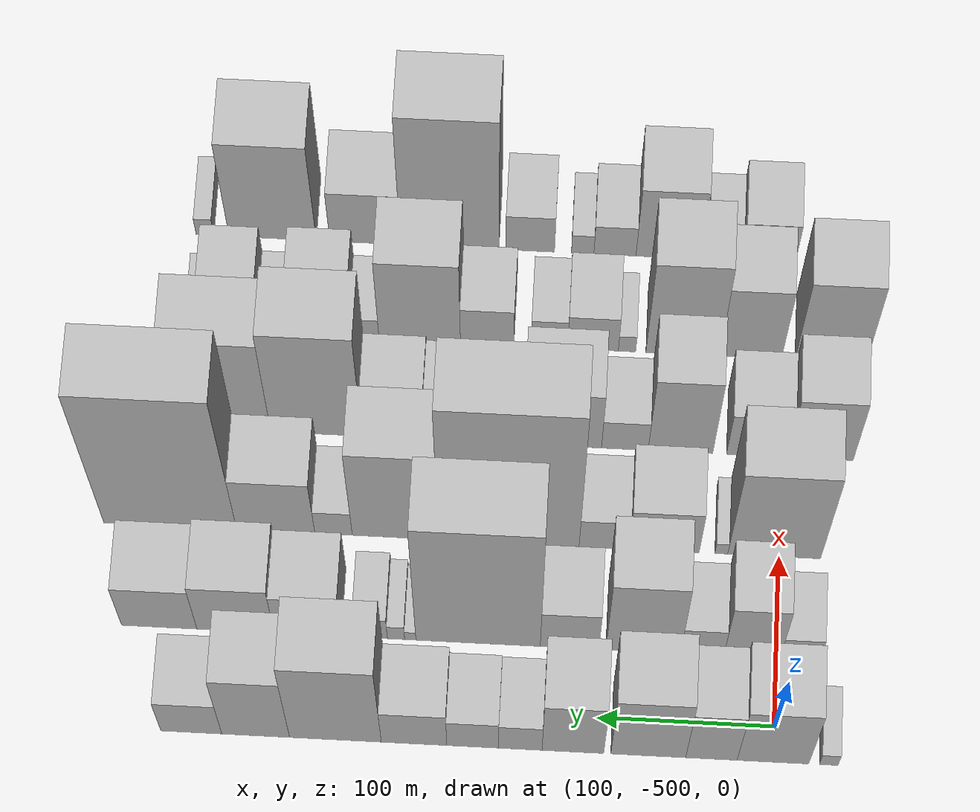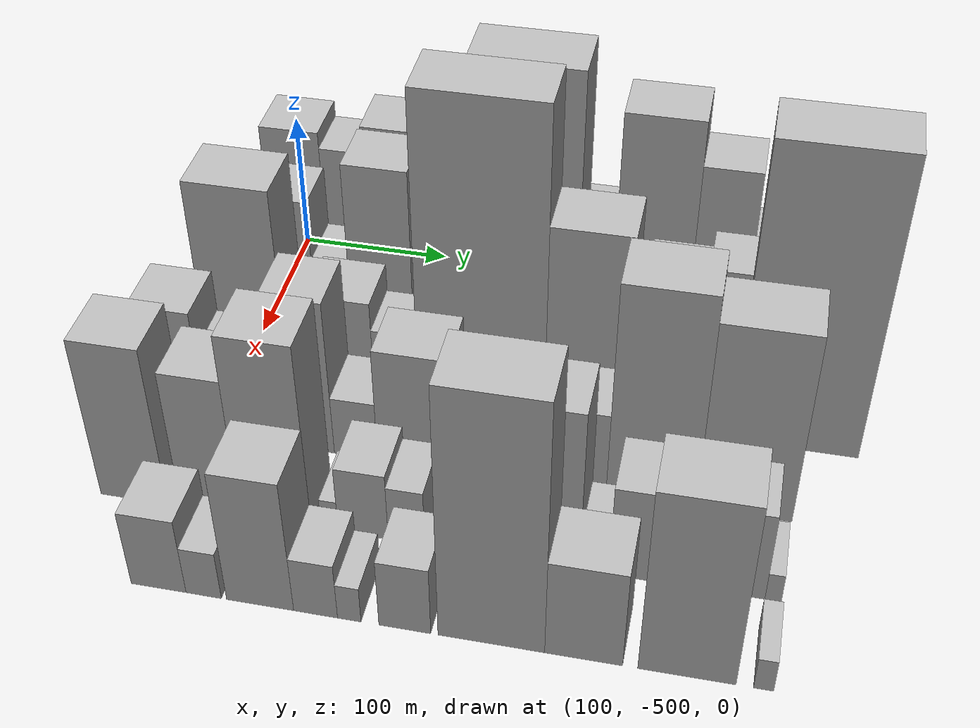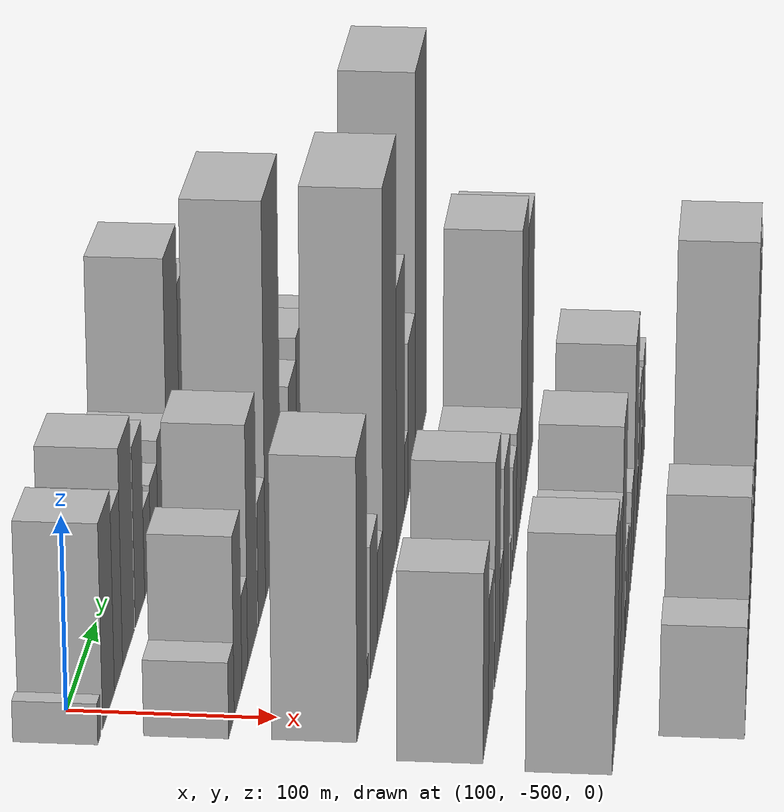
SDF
<sdf version="1.6">
 <world name="default">
  <model name="building_10">
   <static>1</static>
   <pose>100.0000 -530.5697 0 0.000000 0.000000 0.000000</pose>
   <link name="link">
    <pose>0 0 10.50 0 0 0</pose>
    <collision name="collision"><geometry><box><size>40.0000 10.3967 21.0000</size></box></geometry></collision>
    <visual name="visual">
     <cast_shadows>0</cast_shadows>
     <geometry><box><size>40.0000 10.3967 21.0000</size></box></geometry>
     <material>
      <script>
       <uri>model://HANNAS_wall/materials/scripts</uri>
       <uri>model://HANNAS_wall/materials/textures</uri>
       <name>vrc/HANNAS_wall</name>
      </script>
     </material>
    </visual>
   </link>
  </model>
  <model name="building_11">
   <static>1</static>
   <pose>100.0000 -499.3251 0 0.000000 0.000000 0.000000</pose>
   <link name="link">
    <pose>0 0 52.50 0 0 0</pose>
    <collision name="collision"><geometry><box><size>40.0000 40.0925 105.0000</size></box></geometry></collision>
    <visual name="visual">
     <cast_shadows>0</cast_shadows>
     <geometry><box><size>40.0000 40.0925 105.0000</size></box></geometry>
     <material>
      <script>
       <uri>model://HANNAS_wall/materials/scripts</uri>
       <uri>model://HANNAS_wall/materials/textures</uri>
       <name>vrc/HANNAS_wall</name>
      </script>
     </material>
    </visual>
   </link>
  </model>
  <model name="building_12">
   <static>1</static>
   <pose>100.0000 -464.9103 0 0.000000 0.000000 0.000000</pose>
   <link name="link">
    <pose>0 0 46.50 0 0 0</pose>
    <collision name="collision"><geometry><box><size>40.0000 28.7370 93.0000</size></box></geometry></collision>
    <visual name="visual">
     <cast_shadows>0</cast_shadows>
     <geometry><box><size>40.0000 28.7370 93.0000</size></box></geometry>
     <material>
      <script>
       <uri>model://HANNAS_wall/materials/scripts</uri>
       <uri>model://HANNAS_wall/materials/textures</uri>
       <name>vrc/HANNAS_wall</name>
      </script>
     </material>
    </visual>
   </link>
  </model>
  <model name="building_13">
   <static>1</static>
   <pose>100.0000 -429.5925 0 0.000000 0.000000 0.000000</pose>
   <link name="link">
    <pose>0 0 57.00 0 0 0</pose>
    <collision name="collision"><geometry><box><size>40.0000 41.8985 114.0000</size></box></geometry></collision>
    <visual name="visual">
     <cast_shadows>0</cast_shadows>
     <geometry><box><size>40.0000 41.8985 114.0000</size></box></geometry>
     <material>
      <script>
       <uri>model://HANNAS_wall/materials/scripts</uri>
       <uri>model://HANNAS_wall/materials/textures</uri>
       <name>vrc/HANNAS_wall</name>
      </script>
     </material>
    </visual>
   </link>
  </model>
  <model name="building_14">
   <static>1</static>
   <pose>100.0000 -387.3747 0 0.000000 0.000000 0.000000</pose>
   <link name="link">
    <pose>0 0 48.00 0 0 0</pose>
    <collision name="collision"><geometry><box><size>40.0000 34.5371 96.0000</size></box></geometry></collision>
    <visual name="visual">
     <cast_shadows>0</cast_shadows>
     <geometry><box><size>40.0000 34.5371 96.0000</size></box></geometry>
     <material>
      <script>
       <uri>model://HANNAS_wall/materials/scripts</uri>
       <uri>model://HANNAS_wall/materials/textures</uri>
       <name>vrc/HANNAS_wall</name>
      </script>
     </material>
    </visual>
   </link>
  </model>
  <model name="building_15">
   <static>1</static>
   <pose>100.0000 -357.9242 0 0.000000 0.000000 0.000000</pose>
   <link name="link">
    <pose>0 0 24.00 0 0 0</pose>
    <collision name="collision"><geometry><box><size>40.0000 24.3640 48.0000</size></box></geometry></collision>
    <visual name="visual">
     <cast_shadows>0</cast_shadows>
     <geometry><box><size>40.0000 24.3640 48.0000</size></box></geometry>
     <material>
      <script>
       <uri>model://HANNAS_wall/materials/scripts</uri>
       <uri>model://HANNAS_wall/materials/textures</uri>
       <name>vrc/HANNAS_wall</name>
      </script>
     </material>
    </visual>
   </link>
  </model>
  <model name="building_16">
   <static>1</static>
   <pose>100.0000 -331.2372 0 0.000000 0.000000 0.000000</pose>
   <link name="link">
    <pose>0 0 25.50 0 0 0</pose>
    <collision name="collision"><geometry><box><size>40.0000 29.0099 51.0000</size></box></geometry></collision>
    <visual name="visual">
     <cast_shadows>0</cast_shadows>
     <geometry><box><size>40.0000 29.0099 51.0000</size></box></geometry>
     <material>
      <script>
       <uri>model://HANNAS_wall/materials/scripts</uri>
       <uri>model://HANNAS_wall/materials/textures</uri>
       <name>vrc/HANNAS_wall</name>
      </script>
     </material>
    </visual>
   </link>
  </model>
  <model name="building_17">
   <static>1</static>
   <pose>100.0000 -298.3507 0 0.000000 0.000000 0.000000</pose>
   <link name="link">
    <pose>0 0 31.50 0 0 0</pose>
    <collision name="collision"><geometry><box><size>40.0000 36.7631 63.0000</size></box></geometry></collision>
    <visual name="visual">
     <cast_shadows>0</cast_shadows>
     <geometry><box><size>40.0000 36.7631 63.0000</size></box></geometry>
     <material>
      <script>
       <uri>model://HANNAS_wall/materials/scripts</uri>
       <uri>model://HANNAS_wall/materials/textures</uri>
       <name>vrc/HANNAS_wall</name>
      </script>
     </material>
    </visual>
   </link>
  </model>
  <model name="building_18">
   <static>1</static>
   <pose>100.0000 -254.2141 0 0.000000 0.000000 0.000000</pose>
   <link name="link">
    <pose>0 0 73.50 0 0 0</pose>
    <collision name="collision"><geometry><box><size>40.0000 51.5102 147.0000</size></box></geometry></collision>
    <visual name="visual">
     <cast_shadows>0</cast_shadows>
     <geometry><box><size>40.0000 51.5102 147.0000</size></box></geometry>
     <material>
      <script>
       <uri>model://HANNAS_wall/materials/scripts</uri>
       <uri>model://HANNAS_wall/materials/textures</uri>
       <name>vrc/HANNAS_wall</name>
      </script>
     </material>
    </visual>
   </link>
  </model>
  <model name="building_19">
   <static>1</static>
   <pose>100.0000 -209.4136 0 0.000000 0.000000 0.000000</pose>
   <link name="link">
    <pose>0 0 57.00 0 0 0</pose>
    <collision name="collision"><geometry><box><size>40.0000 38.0908 114.0000</size></box></geometry></collision>
    <visual name="visual">
     <cast_shadows>0</cast_shadows>
     <geometry><box><size>40.0000 38.0908 114.0000</size></box></geometry>
     <material>
      <script>
       <uri>model://HANNAS_wall/materials/scripts</uri>
       <uri>model://HANNAS_wall/materials/textures</uri>
       <name>vrc/HANNAS_wall</name>
      </script>
     </material>
    </visual>
   </link>
  </model>
  <model name="building_20">
   <static>1</static>
   <pose>100.0000 -173.2493 0 0.000000 0.000000 0.000000</pose>
   <link name="link">
    <pose>0 0 30.00 0 0 0</pose>
    <collision name="collision"><geometry><box><size>40.0000 34.2378 60.0000</size></box></geometry></collision>
    <visual name="visual">
     <cast_shadows>0</cast_shadows>
     <geometry><box><size>40.0000 34.2378 60.0000</size></box></geometry>
     <material>
      <script>
       <uri>model://HANNAS_wall/materials/scripts</uri>
       <uri>model://HANNAS_wall/materials/textures</uri>
       <name>vrc/HANNAS_wall</name>
      </script>
     </material>
    </visual>
   </link>
  </model>
  <model name="building_68">
   <static>1</static>
   <pose>160.0000 -513.1704 0 0.000000 0.000000 0.000000</pose>
   <link name="link">
    <pose>0 0 19.50 0 0 0</pose>
    <collision name="collision"><geometry><box><size>40.0000 22.6113 39.0000</size></box></geometry></collision>
    <visual name="visual">
     <cast_shadows>0</cast_shadows>
     <geometry><box><size>40.0000 22.6113 39.0000</size></box></geometry>
     <material>
      <script>
       <uri>model://HANNAS_wall/materials/scripts</uri>
       <uri>model://HANNAS_wall/materials/textures</uri>
       <name>vrc/HANNAS_wall</name>
      </script>
     </material>
    </visual>
   </link>
  </model>
  <model name="building_69">
   <static>1</static>
   <pose>160.0000 -485.9086 0 0.000000 0.000000 0.000000</pose>
   <link name="link">
    <pose>0 0 46.50 0 0 0</pose>
    <collision name="collision"><geometry><box><size>40.0000 31.9123 93.0000</size></box></geometry></collision>
    <visual name="visual">
     <cast_shadows>0</cast_shadows>
     <geometry><box><size>40.0000 31.9123 93.0000</size></box></geometry>
     <material>
      <script>
       <uri>model://HANNAS_wall/materials/scripts</uri>
       <uri>model://HANNAS_wall/materials/textures</uri>
       <name>vrc/HANNAS_wall</name>
      </script>
     </material>
    </visual>
   </link>
  </model>
  <model name="building_70">
   <static>1</static>
   <pose>160.0000 -457.7327 0 0.000000 0.000000 0.000000</pose>
   <link name="link">
    <pose>0 0 24.00 0 0 0</pose>
    <collision name="collision"><geometry><box><size>40.0000 24.4393 48.0000</size></box></geometry></collision>
    <visual name="visual">
     <cast_shadows>0</cast_shadows>
     <geometry><box><size>40.0000 24.4393 48.0000</size></box></geometry>
     <material>
      <script>
       <uri>model://HANNAS_wall/materials/scripts</uri>
       <uri>model://HANNAS_wall/materials/textures</uri>
       <name>vrc/HANNAS_wall</name>
      </script>
     </material>
    </visual>
   </link>
  </model>
  <model name="building_71">
   <static>1</static>
   <pose>160.0000 -424.4510 0 0.000000 0.000000 0.000000</pose>
   <link name="link">
    <pose>0 0 63.00 0 0 0</pose>
    <collision name="collision"><geometry><box><size>40.0000 42.1241 126.0000</size></box></geometry></collision>
    <visual name="visual">
     <cast_shadows>0</cast_shadows>
     <geometry><box><size>40.0000 42.1241 126.0000</size></box></geometry>
     <material>
      <script>
       <uri>model://HANNAS_wall/materials/scripts</uri>
       <uri>model://HANNAS_wall/materials/textures</uri>
       <name>vrc/HANNAS_wall</name>
      </script>
     </material>
    </visual>
   </link>
  </model>
  <model name="building_72">
   <static>1</static>
   <pose>160.0000 -382.8253 0 0.000000 0.000000 0.000000</pose>
   <link name="link">
    <pose>0 0 33.00 0 0 0</pose>
    <collision name="collision"><geometry><box><size>40.0000 33.1273 66.0000</size></box></geometry></collision>
    <visual name="visual">
     <cast_shadows>0</cast_shadows>
     <geometry><box><size>40.0000 33.1273 66.0000</size></box></geometry>
     <material>
      <script>
       <uri>model://HANNAS_wall/materials/scripts</uri>
       <uri>model://HANNAS_wall/materials/textures</uri>
       <name>vrc/HANNAS_wall</name>
      </script>
     </material>
    </visual>
   </link>
  </model>
  <model name="building_73">
   <static>1</static>
   <pose>160.0000 -331.0440 0 0.000000 0.000000 0.000000</pose>
   <link name="link">
    <pose>0 0 105.00 0 0 0</pose>
    <collision name="collision"><geometry><box><size>40.0000 70.4354 210.0000</size></box></geometry></collision>
    <visual name="visual">
     <cast_shadows>0</cast_shadows>
     <geometry><box><size>40.0000 70.4354 210.0000</size></box></geometry>
     <material>
      <script>
       <uri>model://HANNAS_wall/materials/scripts</uri>
       <uri>model://HANNAS_wall/materials/textures</uri>
       <name>vrc/HANNAS_wall</name>
      </script>
     </material>
    </visual>
   </link>
  </model>
  <model name="building_74">
   <static>1</static>
   <pose>160.0000 -292.6274 0 0.000000 0.000000 0.000000</pose>
   <link name="link">
    <pose>0 0 7.50 0 0 0</pose>
    <collision name="collision"><geometry><box><size>40.0000 6.3979 15.0000</size></box></geometry></collision>
    <visual name="visual">
     <cast_shadows>0</cast_shadows>
     <geometry><box><size>40.0000 6.3979 15.0000</size></box></geometry>
     <material>
      <script>
       <uri>model://HANNAS_wall/materials/scripts</uri>
       <uri>model://HANNAS_wall/materials/textures</uri>
       <name>vrc/HANNAS_wall</name>
      </script>
     </material>
    </visual>
   </link>
  </model>
  <model name="building_75">
   <static>1</static>
   <pose>160.0000 -284.5521 0 0.000000 0.000000 0.000000</pose>
   <link name="link">
    <pose>0 0 12.00 0 0 0</pose>
    <collision name="collision"><geometry><box><size>40.0000 9.7528 24.0000</size></box></geometry></collision>
    <visual name="visual">
     <cast_shadows>0</cast_shadows>
     <geometry><box><size>40.0000 9.7528 24.0000</size></box></geometry>
     <material>
      <script>
       <uri>model://HANNAS_wall/materials/scripts</uri>
       <uri>model://HANNAS_wall/materials/textures</uri>
       <name>vrc/HANNAS_wall</name>
      </script>
     </material>
    </visual>
   </link>
  </model>
  <model name="building_76">
   <static>1</static>
   <pose>160.0000 -270.1058 0 0.000000 0.000000 0.000000</pose>
   <link name="link">
    <pose>0 0 18.00 0 0 0</pose>
    <collision name="collision"><geometry><box><size>40.0000 19.1396 36.0000</size></box></geometry></collision>
    <visual name="visual">
     <cast_shadows>0</cast_shadows>
     <geometry><box><size>40.0000 19.1396 36.0000</size></box></geometry>
     <material>
      <script>
       <uri>model://HANNAS_wall/materials/scripts</uri>
       <uri>model://HANNAS_wall/materials/textures</uri>
       <name>vrc/HANNAS_wall</name>
      </script>
     </material>
    </visual>
   </link>
  </model>
  <model name="building_77">
   <static>1</static>
   <pose>160.0000 -234.4825 0 0.000000 0.000000 0.000000</pose>
   <link name="link">
    <pose>0 0 34.50 0 0 0</pose>
    <collision name="collision"><geometry><box><size>40.0000 38.1070 69.0000</size></box></geometry></collision>
    <visual name="visual">
     <cast_shadows>0</cast_shadows>
     <geometry><box><size>40.0000 38.1070 69.0000</size></box></geometry>
     <material>
      <script>
       <uri>model://HANNAS_wall/materials/scripts</uri>
       <uri>model://HANNAS_wall/materials/textures</uri>
       <name>vrc/HANNAS_wall</name>
      </script>
     </material>
    </visual>
   </link>
  </model>
  <model name="building_78">
   <static>1</static>
   <pose>160.0000 -193.5010 0 0.000000 0.000000 0.000000</pose>
   <link name="link">
    <pose>0 0 40.50 0 0 0</pose>
    <collision name="collision"><geometry><box><size>40.0000 43.8559 81.0000</size></box></geometry></collision>
    <visual name="visual">
     <cast_shadows>0</cast_shadows>
     <geometry><box><size>40.0000 43.8559 81.0000</size></box></geometry>
     <material>
      <script>
       <uri>model://HANNAS_wall/materials/scripts</uri>
       <uri>model://HANNAS_wall/materials/textures</uri>
       <name>vrc/HANNAS_wall</name>
      </script>
     </material>
    </visual>
   </link>
  </model>
  <model name="building_79">
   <static>1</static>
   <pose>160.0000 -150.1624 0 0.000000 0.000000 0.000000</pose>
   <link name="link">
    <pose>0 0 36.00 0 0 0</pose>
    <collision name="collision"><geometry><box><size>40.0000 42.8214 72.0000</size></box></geometry></collision>
    <visual name="visual">
     <cast_shadows>0</cast_shadows>
     <geometry><box><size>40.0000 42.8214 72.0000</size></box></geometry>
     <material>
      <script>
       <uri>model://HANNAS_wall/materials/scripts</uri>
       <uri>model://HANNAS_wall/materials/textures</uri>
       <name>vrc/HANNAS_wall</name>
      </script>
     </material>
    </visual>
   </link>
  </model>
  <model name="building_121">
   <static>1</static>
   <pose>220.0000 -497.0062 0 0.000000 0.000000 0.000000</pose>
   <link name="link">
    <pose>0 0 72.00 0 0 0</pose>
    <collision name="collision"><geometry><box><size>40.0000 52.9802 144.0000</size></box></geometry></collision>
    <visual name="visual">
     <cast_shadows>0</cast_shadows>
     <geometry><box><size>40.0000 52.9802 144.0000</size></box></geometry>
     <material>
      <script>
       <uri>model://HANNAS_wall/materials/scripts</uri>
       <uri>model://HANNAS_wall/materials/textures</uri>
       <name>vrc/HANNAS_wall</name>
      </script>
     </material>
    </visual>
   </link>
  </model>
  <model name="building_122">
   <static>1</static>
   <pose>220.0000 -466.8539 0 0.000000 0.000000 0.000000</pose>
   <link name="link">
    <pose>0 0 9.00 0 0 0</pose>
    <collision name="collision"><geometry><box><size>40.0000 7.3245 18.0000</size></box></geometry></collision>
    <visual name="visual">
     <cast_shadows>0</cast_shadows>
     <geometry><box><size>40.0000 7.3245 18.0000</size></box></geometry>
     <material>
      <script>
       <uri>model://HANNAS_wall/materials/scripts</uri>
       <uri>model://HANNAS_wall/materials/textures</uri>
       <name>vrc/HANNAS_wall</name>
      </script>
     </material>
    </visual>
   </link>
  </model>
  <model name="building_123">
   <static>1</static>
   <pose>220.0000 -434.1143 0 0.000000 0.000000 0.000000</pose>
   <link name="link">
    <pose>0 0 34.50 0 0 0</pose>
    <collision name="collision"><geometry><box><size>40.0000 40.1546 69.0000</size></box></geometry></collision>
    <visual name="visual">
     <cast_shadows>0</cast_shadows>
     <geometry><box><size>40.0000 40.1546 69.0000</size></box></geometry>
     <material>
      <script>
       <uri>model://HANNAS_wall/materials/scripts</uri>
       <uri>model://HANNAS_wall/materials/textures</uri>
       <name>vrc/HANNAS_wall</name>
      </script>
     </material>
    </visual>
   </link>
  </model>
  <model name="building_124">
   <static>1</static>
   <pose>220.0000 -399.8098 0 0.000000 0.000000 0.000000</pose>
   <link name="link">
    <pose>0 0 24.00 0 0 0</pose>
    <collision name="collision"><geometry><box><size>40.0000 28.4546 48.0000</size></box></geometry></collision>
    <visual name="visual">
     <cast_shadows>0</cast_shadows>
     <geometry><box><size>40.0000 28.4546 48.0000</size></box></geometry>
     <material>
      <script>
       <uri>model://HANNAS_wall/materials/scripts</uri>
       <uri>model://HANNAS_wall/materials/textures</uri>
       <name>vrc/HANNAS_wall</name>
      </script>
     </material>
    </visual>
   </link>
  </model>
  <model name="building_125">
   <static>1</static>
   <pose>220.0000 -345.3680 0 0.000000 0.000000 0.000000</pose>
   <link name="link">
    <pose>0 0 112.50 0 0 0</pose>
    <collision name="collision"><geometry><box><size>40.0000 80.4290 225.0000</size></box></geometry></collision>
    <visual name="visual">
     <cast_shadows>0</cast_shadows>
     <geometry><box><size>40.0000 80.4290 225.0000</size></box></geometry>
     <material>
      <script>
       <uri>model://HANNAS_wall/materials/scripts</uri>
       <uri>model://HANNAS_wall/materials/textures</uri>
       <name>vrc/HANNAS_wall</name>
      </script>
     </material>
    </visual>
   </link>
  </model>
  <model name="building_126">
   <static>1</static>
   <pose>220.0000 -280.5073 0 0.000000 0.000000 0.000000</pose>
   <link name="link">
    <pose>0 0 72.00 0 0 0</pose>
    <collision name="collision"><geometry><box><size>40.0000 49.2924 144.0000</size></box></geometry></collision>
    <visual name="visual">
     <cast_shadows>0</cast_shadows>
     <geometry><box><size>40.0000 49.2924 144.0000</size></box></geometry>
     <material>
      <script>
       <uri>model://HANNAS_wall/materials/scripts</uri>
       <uri>model://HANNAS_wall/materials/textures</uri>
       <name>vrc/HANNAS_wall</name>
      </script>
     </material>
    </visual>
   </link>
  </model>
  <model name="building_127">
   <static>1</static>
   <pose>220.0000 -245.1396 0 0.000000 0.000000 0.000000</pose>
   <link name="link">
    <pose>0 0 19.50 0 0 0</pose>
    <collision name="collision"><geometry><box><size>40.0000 21.4431 39.0000</size></box></geometry></collision>
    <visual name="visual">
     <cast_shadows>0</cast_shadows>
     <geometry><box><size>40.0000 21.4431 39.0000</size></box></geometry>
     <material>
      <script>
       <uri>model://HANNAS_wall/materials/scripts</uri>
       <uri>model://HANNAS_wall/materials/textures</uri>
       <name>vrc/HANNAS_wall</name>
      </script>
     </material>
    </visual>
   </link>
  </model>
  <model name="building_128">
   <static>1</static>
   <pose>220.0000 -211.9823 0 0.000000 0.000000 0.000000</pose>
   <link name="link">
    <pose>0 0 43.50 0 0 0</pose>
    <collision name="collision"><geometry><box><size>40.0000 44.8714 87.0000</size></box></geometry></collision>
    <visual name="visual">
     <cast_shadows>0</cast_shadows>
     <geometry><box><size>40.0000 44.8714 87.0000</size></box></geometry>
     <material>
      <script>
       <uri>model://HANNAS_wall/materials/scripts</uri>
       <uri>model://HANNAS_wall/materials/textures</uri>
       <name>vrc/HANNAS_wall</name>
      </script>
     </material>
    </visual>
   </link>
  </model>
  <model name="building_129">
   <static>1</static>
   <pose>220.0000 -151.4344 0 0.000000 0.000000 0.000000</pose>
   <link name="link">
    <pose>0 0 109.50 0 0 0</pose>
    <collision name="collision"><geometry><box><size>40.0000 76.2244 219.0000</size></box></geometry></collision>
    <visual name="visual">
     <cast_shadows>0</cast_shadows>
     <geometry><box><size>40.0000 76.2244 219.0000</size></box></geometry>
     <material>
      <script>
       <uri>model://HANNAS_wall/materials/scripts</uri>
       <uri>model://HANNAS_wall/materials/textures</uri>
       <name>vrc/HANNAS_wall</name>
      </script>
     </material>
    </visual>
   </link>
  </model>
  <model name="building_172">
   <static>1</static>
   <pose>280.0000 -522.0745 0 0.000000 0.000000 0.000000</pose>
   <link name="link">
    <pose>0 0 48.00 0 0 0</pose>
    <collision name="collision"><geometry><box><size>40.0000 37.8380 96.0000</size></box></geometry></collision>
    <visual name="visual">
     <cast_shadows>0</cast_shadows>
     <geometry><box><size>40.0000 37.8380 96.0000</size></box></geometry>
     <material>
      <script>
       <uri>model://HANNAS_wall/materials/scripts</uri>
       <uri>model://HANNAS_wall/materials/textures</uri>
       <name>vrc/HANNAS_wall</name>
      </script>
     </material>
    </visual>
   </link>
  </model>
  <model name="building_173">
   <static>1</static>
   <pose>280.0000 -485.6080 0 0.000000 0.000000 0.000000</pose>
   <link name="link">
    <pose>0 0 33.00 0 0 0</pose>
    <collision name="collision"><geometry><box><size>40.0000 35.0950 66.0000</size></box></geometry></collision>
    <visual name="visual">
     <cast_shadows>0</cast_shadows>
     <geometry><box><size>40.0000 35.0950 66.0000</size></box></geometry>
     <material>
      <script>
       <uri>model://HANNAS_wall/materials/scripts</uri>
       <uri>model://HANNAS_wall/materials/textures</uri>
       <name>vrc/HANNAS_wall</name>
      </script>
     </material>
    </visual>
   </link>
  </model>
  <model name="building_174">
   <static>1</static>
   <pose>280.0000 -441.4331 0 0.000000 0.000000 0.000000</pose>
   <link name="link">
    <pose>0 0 58.50 0 0 0</pose>
    <collision name="collision"><geometry><box><size>40.0000 37.2547 117.0000</size></box></geometry></collision>
    <visual name="visual">
     <cast_shadows>0</cast_shadows>
     <geometry><box><size>40.0000 37.2547 117.0000</size></box></geometry>
     <material>
      <script>
       <uri>model://HANNAS_wall/materials/scripts</uri>
       <uri>model://HANNAS_wall/materials/textures</uri>
       <name>vrc/HANNAS_wall</name>
      </script>
     </material>
    </visual>
   </link>
  </model>
  <model name="building_175">
   <static>1</static>
   <pose>280.0000 -409.3423 0 0.000000 0.000000 0.000000</pose>
   <link name="link">
    <pose>0 0 22.50 0 0 0</pose>
    <collision name="collision"><geometry><box><size>40.0000 26.9270 45.0000</size></box></geometry></collision>
    <visual name="visual">
     <cast_shadows>0</cast_shadows>
     <geometry><box><size>40.0000 26.9270 45.0000</size></box></geometry>
     <material>
      <script>
       <uri>model://HANNAS_wall/materials/scripts</uri>
       <uri>model://HANNAS_wall/materials/textures</uri>
       <name>vrc/HANNAS_wall</name>
      </script>
     </material>
    </visual>
   </link>
  </model>
  <model name="building_176">
   <static>1</static>
   <pose>280.0000 -373.4056 0 0.000000 0.000000 0.000000</pose>
   <link name="link">
    <pose>0 0 43.50 0 0 0</pose>
    <collision name="collision"><geometry><box><size>40.0000 44.9463 87.0000</size></box></geometry></collision>
    <visual name="visual">
     <cast_shadows>0</cast_shadows>
     <geometry><box><size>40.0000 44.9463 87.0000</size></box></geometry>
     <material>
      <script>
       <uri>model://HANNAS_wall/materials/scripts</uri>
       <uri>model://HANNAS_wall/materials/textures</uri>
       <name>vrc/HANNAS_wall</name>
      </script>
     </material>
    </visual>
   </link>
  </model>
  <model name="building_177">
   <static>1</static>
   <pose>280.0000 -335.5761 0 0.000000 0.000000 0.000000</pose>
   <link name="link">
    <pose>0 0 12.00 0 0 0</pose>
    <collision name="collision"><geometry><box><size>40.0000 10.7127 24.0000</size></box></geometry></collision>
    <visual name="visual">
     <cast_shadows>0</cast_shadows>
     <geometry><box><size>40.0000 10.7127 24.0000</size></box></geometry>
     <material>
      <script>
       <uri>model://HANNAS_wall/materials/scripts</uri>
       <uri>model://HANNAS_wall/materials/textures</uri>
       <name>vrc/HANNAS_wall</name>
      </script>
     </material>
    </visual>
   </link>
  </model>
  <model name="building_178">
   <static>1</static>
   <pose>280.0000 -307.7724 0 0.000000 0.000000 0.000000</pose>
   <link name="link">
    <pose>0 0 28.50 0 0 0</pose>
    <collision name="collision"><geometry><box><size>40.0000 28.8946 57.0000</size></box></geometry></collision>
    <visual name="visual">
     <cast_shadows>0</cast_shadows>
     <geometry><box><size>40.0000 28.8946 57.0000</size></box></geometry>
     <material>
      <script>
       <uri>model://HANNAS_wall/materials/scripts</uri>
       <uri>model://HANNAS_wall/materials/textures</uri>
       <name>vrc/HANNAS_wall</name>
      </script>
     </material>
    </visual>
   </link>
  </model>
  <model name="building_179">
   <static>1</static>
   <pose>280.0000 -275.4444 0 0.000000 0.000000 0.000000</pose>
   <link name="link">
    <pose>0 0 31.50 0 0 0</pose>
    <collision name="collision"><geometry><box><size>40.0000 35.7615 63.0000</size></box></geometry></collision>
    <visual name="visual">
     <cast_shadows>0</cast_shadows>
     <geometry><box><size>40.0000 35.7615 63.0000</size></box></geometry>
     <material>
      <script>
       <uri>model://HANNAS_wall/materials/scripts</uri>
       <uri>model://HANNAS_wall/materials/textures</uri>
       <name>vrc/HANNAS_wall</name>
      </script>
     </material>
    </visual>
   </link>
  </model>
  <model name="building_180">
   <static>1</static>
   <pose>280.0000 -231.1249 0 0.000000 0.000000 0.000000</pose>
   <link name="link">
    <pose>0 0 79.50 0 0 0</pose>
    <collision name="collision"><geometry><box><size>40.0000 52.8775 159.0000</size></box></geometry></collision>
    <visual name="visual">
     <cast_shadows>0</cast_shadows>
     <geometry><box><size>40.0000 52.8775 159.0000</size></box></geometry>
     <material>
      <script>
       <uri>model://HANNAS_wall/materials/scripts</uri>
       <uri>model://HANNAS_wall/materials/textures</uri>
       <name>vrc/HANNAS_wall</name>
      </script>
     </material>
    </visual>
   </link>
  </model>
  <model name="building_181">
   <static>1</static>
   <pose>280.0000 -177.0586 0 0.000000 0.000000 0.000000</pose>
   <link name="link">
    <pose>0 0 70.50 0 0 0</pose>
    <collision name="collision"><geometry><box><size>40.0000 55.2550 141.0000</size></box></geometry></collision>
    <visual name="visual">
     <cast_shadows>0</cast_shadows>
     <geometry><box><size>40.0000 55.2550 141.0000</size></box></geometry>
     <material>
      <script>
       <uri>model://HANNAS_wall/materials/scripts</uri>
       <uri>model://HANNAS_wall/materials/textures</uri>
       <name>vrc/HANNAS_wall</name>
      </script>
     </material>
    </visual>
   </link>
  </model>
  <model name="building_228">
   <static>1</static>
   <pose>340.0000 -526.8813 0 0.000000 0.000000 0.000000</pose>
   <link name="link">
    <pose>0 0 60.00 0 0 0</pose>
    <collision name="collision"><geometry><box><size>40.0000 41.3731 120.0000</size></box></geometry></collision>
    <visual name="visual">
     <cast_shadows>0</cast_shadows>
     <geometry><box><size>40.0000 41.3731 120.0000</size></box></geometry>
     <material>
      <script>
       <uri>model://HANNAS_wall/materials/scripts</uri>
       <uri>model://HANNAS_wall/materials/textures</uri>
       <name>vrc/HANNAS_wall</name>
      </script>
     </material>
    </visual>
   </link>
  </model>
  <model name="building_229">
   <static>1</static>
   <pose>340.0000 -480.2622 0 0.000000 0.000000 0.000000</pose>
   <link name="link">
    <pose>0 0 52.50 0 0 0</pose>
    <collision name="collision"><geometry><box><size>40.0000 35.8652 105.0000</size></box></geometry></collision>
    <visual name="visual">
     <cast_shadows>0</cast_shadows>
     <geometry><box><size>40.0000 35.8652 105.0000</size></box></geometry>
     <material>
      <script>
       <uri>model://HANNAS_wall/materials/scripts</uri>
       <uri>model://HANNAS_wall/materials/textures</uri>
       <name>vrc/HANNAS_wall</name>
      </script>
     </material>
    </visual>
   </link>
  </model>
  <model name="building_230">
   <static>1</static>
   <pose>340.0000 -440.8219 0 0.000000 0.000000 0.000000</pose>
   <link name="link">
    <pose>0 0 69.00 0 0 0</pose>
    <collision name="collision"><geometry><box><size>40.0000 43.0154 138.0000</size></box></geometry></collision>
    <visual name="visual">
     <cast_shadows>0</cast_shadows>
     <geometry><box><size>40.0000 43.0154 138.0000</size></box></geometry>
     <material>
      <script>
       <uri>model://HANNAS_wall/materials/scripts</uri>
       <uri>model://HANNAS_wall/materials/textures</uri>
       <name>vrc/HANNAS_wall</name>
      </script>
     </material>
    </visual>
   </link>
  </model>
  <model name="building_231">
   <static>1</static>
   <pose>340.0000 -408.2420 0 0.000000 0.000000 0.000000</pose>
   <link name="link">
    <pose>0 0 12.00 0 0 0</pose>
    <collision name="collision"><geometry><box><size>40.0000 10.1443 24.0000</size></box></geometry></collision>
    <visual name="visual">
     <cast_shadows>0</cast_shadows>
     <geometry><box><size>40.0000 10.1443 24.0000</size></box></geometry>
     <material>
      <script>
       <uri>model://HANNAS_wall/materials/scripts</uri>
       <uri>model://HANNAS_wall/materials/textures</uri>
       <name>vrc/HANNAS_wall</name>
      </script>
     </material>
    </visual>
   </link>
  </model>
  <model name="building_232">
   <static>1</static>
   <pose>340.0000 -388.4296 0 0.000000 0.000000 0.000000</pose>
   <link name="link">
    <pose>0 0 25.50 0 0 0</pose>
    <collision name="collision"><geometry><box><size>40.0000 29.4806 51.0000</size></box></geometry></collision>
    <visual name="visual">
     <cast_shadows>0</cast_shadows>
     <geometry><box><size>40.0000 29.4806 51.0000</size></box></geometry>
     <material>
      <script>
       <uri>model://HANNAS_wall/materials/scripts</uri>
       <uri>model://HANNAS_wall/materials/textures</uri>
       <name>vrc/HANNAS_wall</name>
      </script>
     </material>
    </visual>
   </link>
  </model>
  <model name="building_233">
   <static>1</static>
   <pose>340.0000 -363.0078 0 0.000000 0.000000 0.000000</pose>
   <link name="link">
    <pose>0 0 21.00 0 0 0</pose>
    <collision name="collision"><geometry><box><size>40.0000 21.3629 42.0000</size></box></geometry></collision>
    <visual name="visual">
     <cast_shadows>0</cast_shadows>
     <geometry><box><size>40.0000 21.3629 42.0000</size></box></geometry>
     <material>
      <script>
       <uri>model://HANNAS_wall/materials/scripts</uri>
       <uri>model://HANNAS_wall/materials/textures</uri>
       <name>vrc/HANNAS_wall</name>
      </script>
     </material>
    </visual>
   </link>
  </model>
  <model name="building_234">
   <static>1</static>
   <pose>340.0000 -326.7243 0 0.000000 0.000000 0.000000</pose>
   <link name="link">
    <pose>0 0 27.00 0 0 0</pose>
    <collision name="collision"><geometry><box><size>40.0000 31.2042 54.0000</size></box></geometry></collision>
    <visual name="visual">
     <cast_shadows>0</cast_shadows>
     <geometry><box><size>40.0000 31.2042 54.0000</size></box></geometry>
     <material>
      <script>
       <uri>model://HANNAS_wall/materials/scripts</uri>
       <uri>model://HANNAS_wall/materials/textures</uri>
       <name>vrc/HANNAS_wall</name>
      </script>
     </material>
    </visual>
   </link>
  </model>
  <model name="building_235">
   <static>1</static>
   <pose>340.0000 -287.3579 0 0.000000 0.000000 0.000000</pose>
   <link name="link">
    <pose>0 0 60.00 0 0 0</pose>
    <collision name="collision"><geometry><box><size>40.0000 47.5287 120.0000</size></box></geometry></collision>
    <visual name="visual">
     <cast_shadows>0</cast_shadows>
     <geometry><box><size>40.0000 47.5287 120.0000</size></box></geometry>
     <material>
      <script>
       <uri>model://HANNAS_wall/materials/scripts</uri>
       <uri>model://HANNAS_wall/materials/textures</uri>
       <name>vrc/HANNAS_wall</name>
      </script>
     </material>
    </visual>
   </link>
  </model>
  <model name="building_236">
   <static>1</static>
   <pose>340.0000 -255.3318 0 0.000000 0.000000 0.000000</pose>
   <link name="link">
    <pose>0 0 15.00 0 0 0</pose>
    <collision name="collision"><geometry><box><size>40.0000 16.5235 30.0000</size></box></geometry></collision>
    <visual name="visual">
     <cast_shadows>0</cast_shadows>
     <geometry><box><size>40.0000 16.5235 30.0000</size></box></geometry>
     <material>
      <script>
       <uri>model://HANNAS_wall/materials/scripts</uri>
       <uri>model://HANNAS_wall/materials/textures</uri>
       <name>vrc/HANNAS_wall</name>
      </script>
     </material>
    </visual>
   </link>
  </model>
  <model name="building_237">
   <static>1</static>
   <pose>340.0000 -228.8859 0 0.000000 0.000000 0.000000</pose>
   <link name="link">
    <pose>0 0 34.50 0 0 0</pose>
    <collision name="collision"><geometry><box><size>40.0000 36.3682 69.0000</size></box></geometry></collision>
    <visual name="visual">
     <cast_shadows>0</cast_shadows>
     <geometry><box><size>40.0000 36.3682 69.0000</size></box></geometry>
     <material>
      <script>
       <uri>model://HANNAS_wall/materials/scripts</uri>
       <uri>model://HANNAS_wall/materials/textures</uri>
       <name>vrc/HANNAS_wall</name>
      </script>
     </material>
    </visual>
   </link>
  </model>
  <model name="building_238">
   <static>1</static>
   <pose>340.0000 -202.3946 0 0.000000 0.000000 0.000000</pose>
   <link name="link">
    <pose>0 0 15.00 0 0 0</pose>
    <collision name="collision"><geometry><box><size>40.0000 16.6144 30.0000</size></box></geometry></collision>
    <visual name="visual">
     <cast_shadows>0</cast_shadows>
     <geometry><box><size>40.0000 16.6144 30.0000</size></box></geometry>
     <material>
      <script>
       <uri>model://HANNAS_wall/materials/scripts</uri>
       <uri>model://HANNAS_wall/materials/textures</uri>
       <name>vrc/HANNAS_wall</name>
      </script>
     </material>
    </visual>
   </link>
  </model>
  <model name="building_239">
   <static>1</static>
   <pose>340.0000 -177.3773 0 0.000000 0.000000 0.000000</pose>
   <link name="link">
    <pose>0 0 33.00 0 0 0</pose>
    <collision name="collision"><geometry><box><size>40.0000 33.4204 66.0000</size></box></geometry></collision>
    <visual name="visual">
     <cast_shadows>0</cast_shadows>
     <geometry><box><size>40.0000 33.4204 66.0000</size></box></geometry>
     <material>
      <script>
       <uri>model://HANNAS_wall/materials/scripts</uri>
       <uri>model://HANNAS_wall/materials/textures</uri>
       <name>vrc/HANNAS_wall</name>
      </script>
     </material>
    </visual>
   </link>
  </model>
  <model name="building_240">
   <static>1</static>
   <pose>340.0000 -156.1755 0 0.000000 0.000000 0.000000</pose>
   <link name="link">
    <pose>0 0 10.50 0 0 0</pose>
    <collision name="collision"><geometry><box><size>40.0000 8.9831 21.0000</size></box></geometry></collision>
    <visual name="visual">
     <cast_shadows>0</cast_shadows>
     <geometry><box><size>40.0000 8.9831 21.0000</size></box></geometry>
     <material>
      <script>
       <uri>model://HANNAS_wall/materials/scripts</uri>
       <uri>model://HANNAS_wall/materials/textures</uri>
       <name>vrc/HANNAS_wall</name>
      </script>
     </material>
    </visual>
   </link>
  </model>
  <model name="building_288">
   <static>1</static>
   <pose>400.0000 -488.8572 0 0.000000 0.000000 0.000000</pose>
   <link name="link">
    <pose>0 0 28.50 0 0 0</pose>
    <collision name="collision"><geometry><box><size>40.0000 31.9254 57.0000</size></box></geometry></collision>
    <visual name="visual">
     <cast_shadows>0</cast_shadows>
     <geometry><box><size>40.0000 31.9254 57.0000</size></box></geometry>
     <material>
      <script>
       <uri>model://HANNAS_wall/materials/scripts</uri>
       <uri>model://HANNAS_wall/materials/textures</uri>
       <name>vrc/HANNAS_wall</name>
      </script>
     </material>
    </visual>
   </link>
  </model>
  <model name="building_289">
   <static>1</static>
   <pose>400.0000 -462.6830 0 0.000000 0.000000 0.000000</pose>
   <link name="link">
    <pose>0 0 18.00 0 0 0</pose>
    <collision name="collision"><geometry><box><size>40.0000 20.4231 36.0000</size></box></geometry></collision>
    <visual name="visual">
     <cast_shadows>0</cast_shadows>
     <geometry><box><size>40.0000 20.4231 36.0000</size></box></geometry>
     <material>
      <script>
       <uri>model://HANNAS_wall/materials/scripts</uri>
       <uri>model://HANNAS_wall/materials/textures</uri>
       <name>vrc/HANNAS_wall</name>
      </script>
     </material>
    </visual>
   </link>
  </model>
  <model name="building_290">
   <static>1</static>
   <pose>400.0000 -430.3225 0 0.000000 0.000000 0.000000</pose>
   <link name="link">
    <pose>0 0 49.50 0 0 0</pose>
    <collision name="collision"><geometry><box><size>40.0000 38.2978 99.0000</size></box></geometry></collision>
    <visual name="visual">
     <cast_shadows>0</cast_shadows>
     <geometry><box><size>40.0000 38.2978 99.0000</size></box></geometry>
     <material>
      <script>
       <uri>model://HANNAS_wall/materials/scripts</uri>
       <uri>model://HANNAS_wall/materials/textures</uri>
       <name>vrc/HANNAS_wall</name>
      </script>
     </material>
    </visual>
   </link>
  </model>
  <model name="building_291">
   <static>1</static>
   <pose>400.0000 -398.7850 0 0.000000 0.000000 0.000000</pose>
   <link name="link">
    <pose>0 0 21.00 0 0 0</pose>
    <collision name="collision"><geometry><box><size>40.0000 24.7772 42.0000</size></box></geometry></collision>
    <visual name="visual">
     <cast_shadows>0</cast_shadows>
     <geometry><box><size>40.0000 24.7772 42.0000</size></box></geometry>
     <material>
      <script>
       <uri>model://HANNAS_wall/materials/scripts</uri>
       <uri>model://HANNAS_wall/materials/textures</uri>
       <name>vrc/HANNAS_wall</name>
      </script>
     </material>
    </visual>
   </link>
  </model>
  <model name="building_292">
   <static>1</static>
   <pose>400.0000 -379.8200 0 0.000000 0.000000 0.000000</pose>
   <link name="link">
    <pose>0 0 13.50 0 0 0</pose>
    <collision name="collision"><geometry><box><size>40.0000 13.1527 27.0000</size></box></geometry></collision>
    <visual name="visual">
     <cast_shadows>0</cast_shadows>
     <geometry><box><size>40.0000 13.1527 27.0000</size></box></geometry>
     <material>
      <script>
       <uri>model://HANNAS_wall/materials/scripts</uri>
       <uri>model://HANNAS_wall/materials/textures</uri>
       <name>vrc/HANNAS_wall</name>
      </script>
     </material>
    </visual>
   </link>
  </model>
  <model name="building_293">
   <static>1</static>
   <pose>400.0000 -348.8878 0 0.000000 0.000000 0.000000</pose>
   <link name="link">
    <pose>0 0 25.50 0 0 0</pose>
    <collision name="collision"><geometry><box><size>40.0000 28.7115 51.0000</size></box></geometry></collision>
    <visual name="visual">
     <cast_shadows>0</cast_shadows>
     <geometry><box><size>40.0000 28.7115 51.0000</size></box></geometry>
     <material>
      <script>
       <uri>model://HANNAS_wall/materials/scripts</uri>
       <uri>model://HANNAS_wall/materials/textures</uri>
       <name>vrc/HANNAS_wall</name>
      </script>
     </material>
    </visual>
   </link>
  </model>
  <model name="building_294">
   <static>1</static>
   <pose>400.0000 -301.5064 0 0.000000 0.000000 0.000000</pose>
   <link name="link">
    <pose>0 0 91.50 0 0 0</pose>
    <collision name="collision"><geometry><box><size>40.0000 58.0514 183.0000</size></box></geometry></collision>
    <visual name="visual">
     <cast_shadows>0</cast_shadows>
     <geometry><box><size>40.0000 58.0514 183.0000</size></box></geometry>
     <material>
      <script>
       <uri>model://HANNAS_wall/materials/scripts</uri>
       <uri>model://HANNAS_wall/materials/textures</uri>
       <name>vrc/HANNAS_wall</name>
      </script>
     </material>
    </visual>
   </link>
  </model>
  <model name="building_295">
   <static>1</static>
   <pose>400.0000 -251.6484 0 0.000000 0.000000 0.000000</pose>
   <link name="link">
    <pose>0 0 36.00 0 0 0</pose>
    <collision name="collision"><geometry><box><size>40.0000 41.6645 72.0000</size></box></geometry></collision>
    <visual name="visual">
     <cast_shadows>0</cast_shadows>
     <geometry><box><size>40.0000 41.6645 72.0000</size></box></geometry>
     <material>
      <script>
       <uri>model://HANNAS_wall/materials/scripts</uri>
       <uri>model://HANNAS_wall/materials/textures</uri>
       <name>vrc/HANNAS_wall</name>
      </script>
     </material>
    </visual>
   </link>
  </model>
  <model name="building_296">
   <static>1</static>
   <pose>400.0000 -197.0602 0 0.000000 0.000000 0.000000</pose>
   <link name="link">
    <pose>0 0 67.50 0 0 0</pose>
    <collision name="collision"><geometry><box><size>40.0000 51.5118 135.0000</size></box></geometry></collision>
    <visual name="visual">
     <cast_shadows>0</cast_shadows>
     <geometry><box><size>40.0000 51.5118 135.0000</size></box></geometry>
     <material>
      <script>
       <uri>model://HANNAS_wall/materials/scripts</uri>
       <uri>model://HANNAS_wall/materials/textures</uri>
       <name>vrc/HANNAS_wall</name>
      </script>
     </material>
    </visual>
   </link>
  </model>
  <model name="building_297">
   <static>1</static>
   <pose>400.0000 -157.0915 0 0.000000 0.000000 0.000000</pose>
   <link name="link">
    <pose>0 0 12.00 0 0 0</pose>
    <collision name="collision"><geometry><box><size>40.0000 10.4256 24.0000</size></box></geometry></collision>
    <visual name="visual">
     <cast_shadows>0</cast_shadows>
     <geometry><box><size>40.0000 10.4256 24.0000</size></box></geometry>
     <material>
      <script>
       <uri>model://HANNAS_wall/materials/scripts</uri>
       <uri>model://HANNAS_wall/materials/textures</uri>
       <name>vrc/HANNAS_wall</name>
      </script>
     </material>
    </visual>
   </link>
  </model>
 </world>
</sdf>
